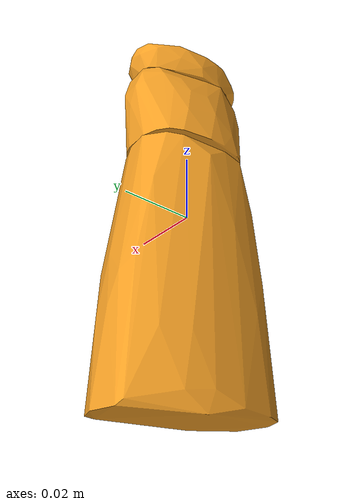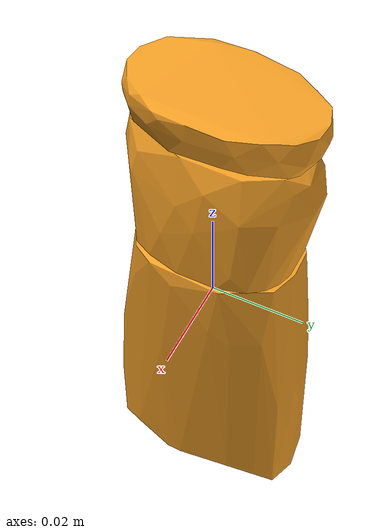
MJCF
<mujoco model="ShowerGel">
  <asset>
    <mesh file="meshes/ShowerGel/ShowerGel_0.stl" name="ShowerGel_0" scale="1.10 1.0 0.9"/>
    <mesh file="meshes/ShowerGel/ShowerGel_1.stl" name="ShowerGel_1" scale="1.10 1.0 0.9"/>
    <mesh file="meshes/ShowerGel/ShowerGel_2.stl" name="ShowerGel_2" scale="1.10 1.0 0.9"/>
  </asset>
  <worldbody>
    <body>
      <body name="collision">
        <geom condim="4" density="100" friction="1.5 0.3 0.1" group="1" mesh="ShowerGel_0" pos="0 0 0" rgba="0.95 0.62 0.14 1" solimp="0.998 0.998 0.001" solref="0.002 1" type="mesh"/>
        <geom condim="4" density="100" friction="1.5 0.3 0.1" group="1" mesh="ShowerGel_1" pos="0 0 0" rgba="0.95 0.62 0.14 1" solimp="0.998 0.998 0.001" solref="0.002 1" type="mesh"/>
        <geom condim="4" density="100" friction="1.5 0.3 0.1" group="1" mesh="ShowerGel_2" pos="0 0 0" rgba="0.95 0.62 0.14 1" solimp="0.998 0.998 0.001" solref="0.002 1" type="mesh"/>
      </body>
      <body name="visual">
        <geom conaffinity="0" contype="0" group="0" mass="0.0001" mesh="ShowerGel_0" pos="0 0 0" rgba="0.95 0.62 0.14 1" type="mesh"/>
        <geom conaffinity="0" contype="0" group="0" mass="0.0001" mesh="ShowerGel_1" pos="0 0 0" rgba="0.95 0.62 0.14 1" type="mesh"/>
        <geom conaffinity="0" contype="0" group="0" mass="0.0001" mesh="ShowerGel_2" pos="0 0 0" rgba="0.95 0.62 0.14 1" type="mesh"/>
      </body>
      <site name="bottom_site" pos="0 0 -0.06" rgba="0 0 0 0" size="0.005"/>
      <site name="top_site" pos="0 0 0.04" rgba="0 0 0 0" size="0.005"/>
      <site name="horizontal_radius_site" pos="0.025 0.025 0" rgba="0 0 0 0" size="0.005"/>
    </body>
  </worldbody>
</mujoco>
